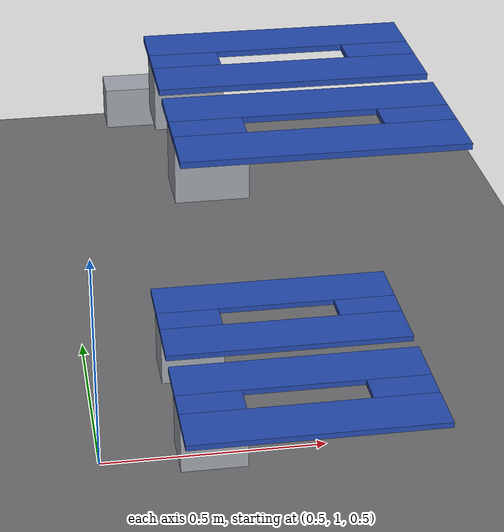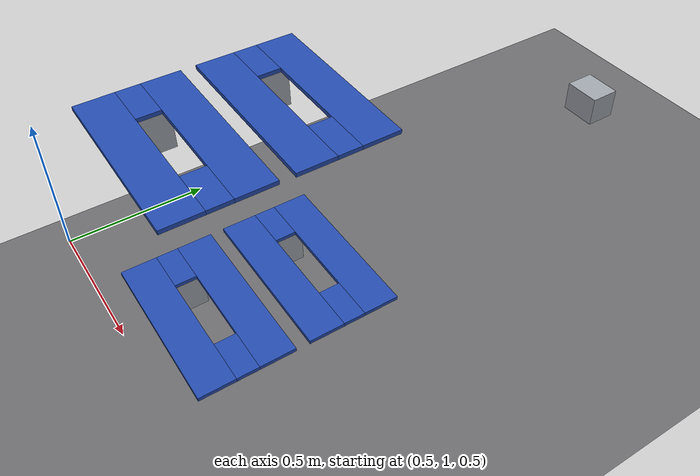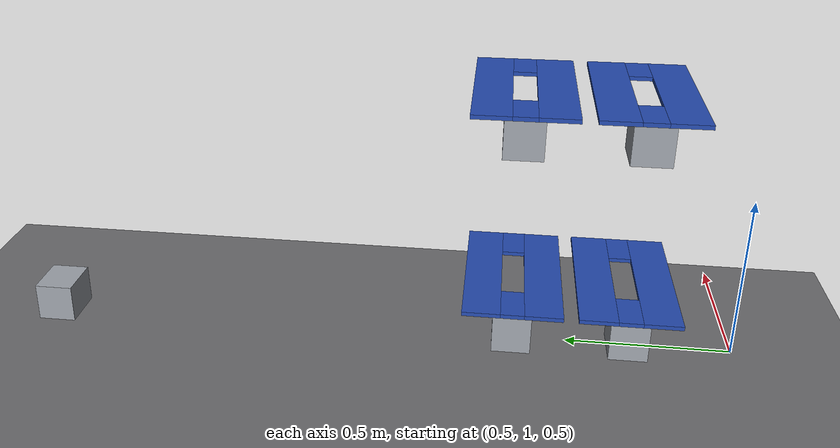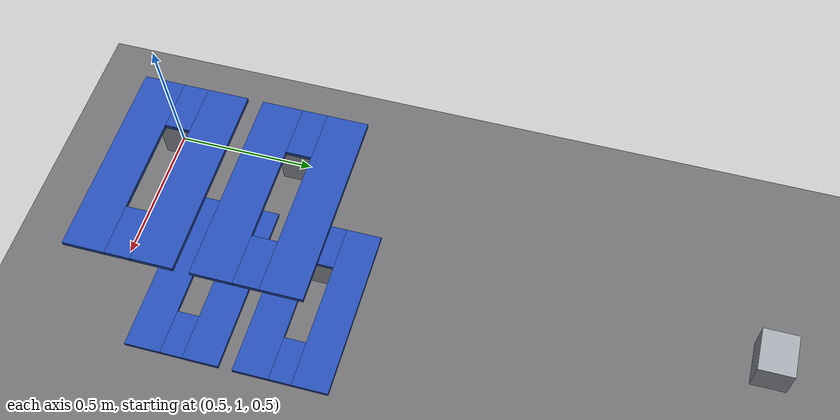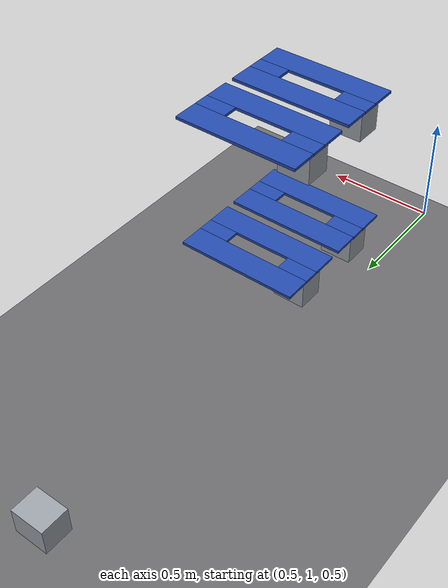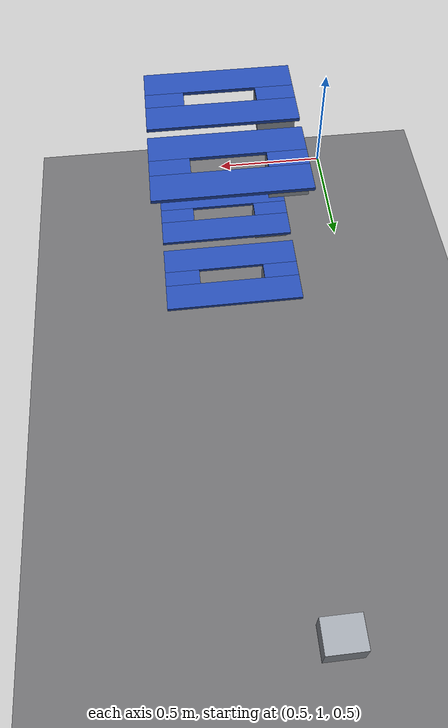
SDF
<sdf version="1.11">
 <world name="factory">
  <model name="ground_plane">
   <static>true</static>
   <link name="link">
    <collision name="collision">
     <geometry><plane><normal>0 0 1</normal><size>100 100</size></plane></geometry>
    </collision>
    <visual name="visual">
     <geometry><plane><normal>0 0 1</normal><size>100 100</size></plane></geometry>
     <material>
      <ambient>0.8 0.8 0.8 1</ambient>
      <diffuse>0.42 0.42 0.43 1</diffuse>
      <specular>0.04 0.04 0.04 1</specular>
      <shininess>4</shininess>
     </material>
    </visual>
   </link>
  </model>
  <model name="storage_conveyor">
   <static>true</static>
   <link name="belt_frame">
    <visual name="storage_low_l0_belt0">
     <geometry><box><size>0.62 0.13 0.014</size></box></geometry>
     <pose>1.01 1.165 0.45 0 0 0</pose>
     <material>
      <ambient>0.04 0.08 0.18 1</ambient>
      <diffuse>0.14 0.29 0.68 1</diffuse>
      <specular>0.30 0.32 0.36 1</specular>
      <shininess>32</shininess>
     </material>
    </visual>
    <visual name="storage_low_l0_belt1">
     <geometry><box><size>0.62 0.13 0.014</size></box></geometry>
     <pose>1.01 1.375 0.45 0 0 0</pose>
     <material>
      <ambient>0.04 0.08 0.18 1</ambient>
      <diffuse>0.14 0.29 0.68 1</diffuse>
      <specular>0.30 0.32 0.36 1</specular>
      <shininess>32</shininess>
     </material>
    </visual>
    <visual name="storage_low_l0_ret0">
     <geometry><box><size>0.16 0.08 0.014</size></box></geometry>
     <pose>0.78 1.27 0.45 0 0 0</pose>
     <material>
      <ambient>0.04 0.08 0.18 1</ambient>
      <diffuse>0.14 0.29 0.68 1</diffuse>
      <specular>0.30 0.32 0.36 1</specular>
      <shininess>32</shininess>
     </material>
    </visual>
    <visual name="storage_low_l0_ret1">
     <geometry><box><size>0.16 0.08 0.014</size></box></geometry>
     <pose>1.24 1.27 0.45 0 0 0</pose>
     <material>
      <ambient>0.04 0.08 0.18 1</ambient>
      <diffuse>0.14 0.29 0.68 1</diffuse>
      <specular>0.30 0.32 0.36 1</specular>
      <shininess>32</shininess>
     </material>
    </visual>
    <visual name="storage_low_l1_belt0">
     <geometry><box><size>0.62 0.13 0.014</size></box></geometry>
     <pose>1.01 1.555 0.45 0 0 0</pose>
     <material>
      <ambient>0.04 0.08 0.18 1</ambient>
      <diffuse>0.14 0.29 0.68 1</diffuse>
      <specular>0.30 0.32 0.36 1</specular>
      <shininess>32</shininess>
     </material>
    </visual>
    <visual name="storage_low_l1_belt1">
     <geometry><box><size>0.62 0.13 0.014</size></box></geometry>
     <pose>1.01 1.765 0.45 0 0 0</pose>
     <material>
      <ambient>0.04 0.08 0.18 1</ambient>
      <diffuse>0.14 0.29 0.68 1</diffuse>
      <specular>0.30 0.32 0.36 1</specular>
      <shininess>32</shininess>
     </material>
    </visual>
    <visual name="storage_low_l1_ret0">
     <geometry><box><size>0.16 0.08 0.014</size></box></geometry>
     <pose>0.78 1.66 0.45 0 0 0</pose>
     <material>
      <ambient>0.04 0.08 0.18 1</ambient>
      <diffuse>0.14 0.29 0.68 1</diffuse>
      <specular>0.30 0.32 0.36 1</specular>
      <shininess>32</shininess>
     </material>
    </visual>
    <visual name="storage_low_l1_ret1">
     <geometry><box><size>0.16 0.08 0.014</size></box></geometry>
     <pose>1.24 1.66 0.45 0 0 0</pose>
     <material>
      <ambient>0.04 0.08 0.18 1</ambient>
      <diffuse>0.14 0.29 0.68 1</diffuse>
      <specular>0.30 0.32 0.36 1</specular>
      <shininess>32</shininess>
     </material>
    </visual>
    <visual name="storage_high_l0_belt0">
     <geometry><box><size>0.62 0.13 0.014</size></box></geometry>
     <pose>1.01 1.165 1.15 0 0 0</pose>
     <material>
      <ambient>0.04 0.08 0.18 1</ambient>
      <diffuse>0.14 0.29 0.68 1</diffuse>
      <specular>0.30 0.32 0.36 1</specular>
      <shininess>32</shininess>
     </material>
    </visual>
    <visual name="storage_high_l0_belt1">
     <geometry><box><size>0.62 0.13 0.014</size></box></geometry>
     <pose>1.01 1.375 1.15 0 0 0</pose>
     <material>
      <ambient>0.04 0.08 0.18 1</ambient>
      <diffuse>0.14 0.29 0.68 1</diffuse>
      <specular>0.30 0.32 0.36 1</specular>
      <shininess>32</shininess>
     </material>
    </visual>
    <visual name="storage_high_l0_ret0">
     <geometry><box><size>0.16 0.08 0.014</size></box></geometry>
     <pose>0.78 1.27 1.15 0 0 0</pose>
     <material>
      <ambient>0.04 0.08 0.18 1</ambient>
      <diffuse>0.14 0.29 0.68 1</diffuse>
      <specular>0.30 0.32 0.36 1</specular>
      <shininess>32</shininess>
     </material>
    </visual>
    <visual name="storage_high_l0_ret1">
     <geometry><box><size>0.16 0.08 0.014</size></box></geometry>
     <pose>1.24 1.27 1.15 0 0 0</pose>
     <material>
      <ambient>0.04 0.08 0.18 1</ambient>
      <diffuse>0.14 0.29 0.68 1</diffuse>
      <specular>0.30 0.32 0.36 1</specular>
      <shininess>32</shininess>
     </material>
    </visual>
    <visual name="storage_high_l1_belt0">
     <geometry><box><size>0.62 0.13 0.014</size></box></geometry>
     <pose>1.01 1.555 1.15 0 0 0</pose>
     <material>
      <ambient>0.04 0.08 0.18 1</ambient>
      <diffuse>0.14 0.29 0.68 1</diffuse>
      <specular>0.30 0.32 0.36 1</specular>
      <shininess>32</shininess>
     </material>
    </visual>
    <visual name="storage_high_l1_belt1">
     <geometry><box><size>0.62 0.13 0.014</size></box></geometry>
     <pose>1.01 1.765 1.15 0 0 0</pose>
     <material>
      <ambient>0.04 0.08 0.18 1</ambient>
      <diffuse>0.14 0.29 0.68 1</diffuse>
      <specular>0.30 0.32 0.36 1</specular>
      <shininess>32</shininess>
     </material>
    </visual>
    <visual name="storage_high_l1_ret0">
     <geometry><box><size>0.16 0.08 0.014</size></box></geometry>
     <pose>0.78 1.66 1.15 0 0 0</pose>
     <material>
      <ambient>0.04 0.08 0.18 1</ambient>
      <diffuse>0.14 0.29 0.68 1</diffuse>
      <specular>0.30 0.32 0.36 1</specular>
      <shininess>32</shininess>
     </material>
    </visual>
    <visual name="storage_high_l1_ret1">
     <geometry><box><size>0.16 0.08 0.014</size></box></geometry>
     <pose>1.24 1.66 1.15 0 0 0</pose>
     <material>
      <ambient>0.04 0.08 0.18 1</ambient>
      <diffuse>0.14 0.29 0.68 1</diffuse>
      <specular>0.30 0.32 0.36 1</specular>
      <shininess>32</shininess>
     </material>
    </visual>
   </link>
  </model>
  <model name="storage_low_l0_motorbox">
   <pose>0.78 1.27 0.378 0 0 0</pose>
   <link name="gearbox">
    <inertial>
     <mass>24.0</mass>
     <inertia><ixx>0.09</ixx><iyy>0.09</iyy><izz>0.11</izz><ixy>0</ixy><ixz>0</ixz><iyz>0</iyz></inertia>
    </inertial>
    <visual name="housing">
     <geometry><box><size>0.16 0.13 0.13</size></box></geometry>
     <material>
      <ambient>0.17 0.18 0.19 1</ambient>
      <diffuse>0.62 0.64 0.67 1</diffuse>
      <specular>0.85 0.86 0.90 1</specular>
      <shininess>72</shininess>
     </material>
    </visual>
    <collision name="collision"><geometry><box><size>0.16 0.13 0.13</size></box></geometry></collision>
   </link>
  </model>
  <model name="storage_low_l1_motorbox">
   <pose>0.78 1.66 0.378 0 0 0</pose>
   <link name="gearbox">
    <inertial>
     <mass>24.0</mass>
     <inertia><ixx>0.09</ixx><iyy>0.09</iyy><izz>0.11</izz><ixy>0</ixy><ixz>0</ixz><iyz>0</iyz></inertia>
    </inertial>
    <visual name="housing">
     <geometry><box><size>0.16 0.13 0.13</size></box></geometry>
     <material>
      <ambient>0.17 0.18 0.19 1</ambient>
      <diffuse>0.62 0.64 0.67 1</diffuse>
      <specular>0.85 0.86 0.90 1</specular>
      <shininess>72</shininess>
     </material>
    </visual>
    <collision name="collision"><geometry><box><size>0.16 0.13 0.13</size></box></geometry></collision>
   </link>
  </model>
  <model name="storage_high_l0_motorbox">
   <pose>0.78 1.27 1.078 0 0 0</pose>
   <link name="gearbox">
    <inertial>
     <mass>24.0</mass>
     <inertia><ixx>0.09</ixx><iyy>0.09</iyy><izz>0.11</izz><ixy>0</ixy><ixz>0</ixz><iyz>0</iyz></inertia>
    </inertial>
    <visual name="housing">
     <geometry><box><size>0.16 0.13 0.13</size></box></geometry>
     <material>
      <ambient>0.17 0.18 0.19 1</ambient>
      <diffuse>0.62 0.64 0.67 1</diffuse>
      <specular>0.85 0.86 0.90 1</specular>
      <shininess>72</shininess>
     </material>
    </visual>
    <collision name="collision"><geometry><box><size>0.16 0.13 0.13</size></box></geometry></collision>
   </link>
  </model>
  <model name="storage_high_l1_motorbox">
   <pose>0.78 1.66 1.078 0 0 0</pose>
   <link name="gearbox">
    <inertial>
     <mass>24.0</mass>
     <inertia><ixx>0.09</ixx><iyy>0.09</iyy><izz>0.11</izz><ixy>0</ixy><ixz>0</ixz><iyz>0</iyz></inertia>
    </inertial>
    <visual name="housing">
     <geometry><box><size>0.16 0.13 0.13</size></box></geometry>
     <material>
      <ambient>0.17 0.18 0.19 1</ambient>
      <diffuse>0.62 0.64 0.67 1</diffuse>
      <specular>0.85 0.86 0.90 1</specular>
      <shininess>72</shininess>
     </material>
    </visual>
    <collision name="collision"><geometry><box><size>0.16 0.13 0.13</size></box></geometry></collision>
   </link>
  </model>
  <model name="fridge_freezer_l0_motorbox">
   <pose>0.78 3.27 0.378 0 0 0</pose>
   <link name="gearbox">
    <inertial>
     <mass>24.0</mass>
     <inertia><ixx>0.09</ixx><iyy>0.09</iyy><izz>0.11</izz><ixy>0</ixy><ixz>0</ixz><iyz>0</iyz></inertia>
    </inertial>
    <visual name="housing">
     <geometry><box><size>0.16 0.13 0.13</size></box></geometry>
     <material>
      <ambient>0.17 0.18 0.19 1</ambient>
      <diffuse>0.62 0.64 0.67 1</diffuse>
      <specular>0.85 0.86 0.90 1</specular>
      <shininess>72</shininess>
     </material>
    </visual>
    <collision name="collision"><geometry><box><size>0.16 0.13 0.13</size></box></geometry></collision>
   </link>
  </model>
 </world>
</sdf>
